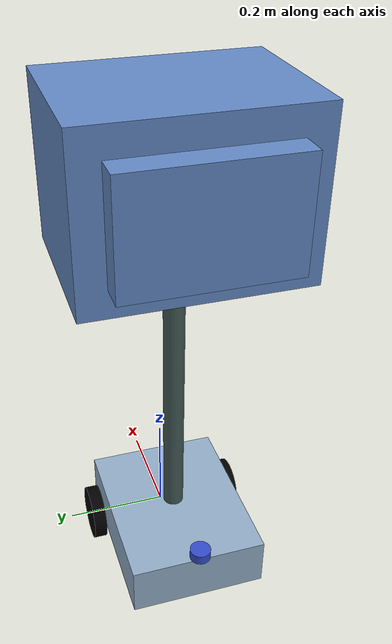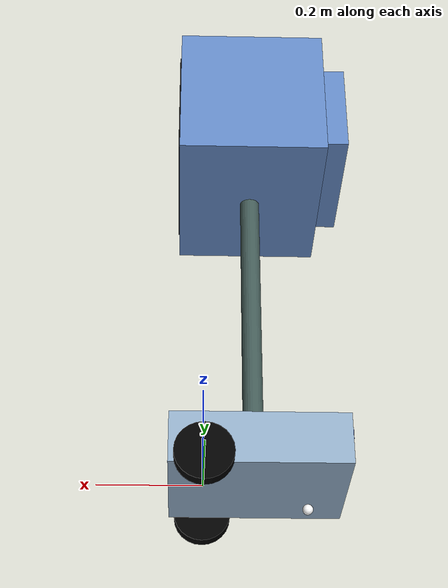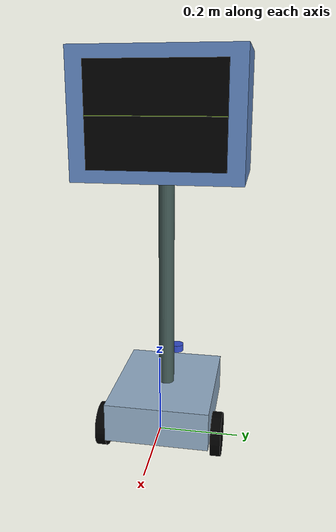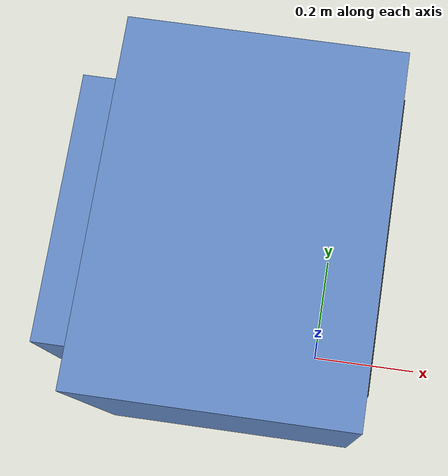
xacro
<?xml version="1.0" ?>
<robot name='robot' xmlns:xacro="http://ros.org/wiki/xacro">

    <xacro:include filename="gazebo.urdf.xacro" />
    <xacro:include filename="lidar.urdf.xacro" />
    <!--xacro:include filename="$(find robot_description)/urdf/depth.urdf.xacro" /-->

    <xacro:property name="chassis_length" value="0.335"/>
    <xacro:property name="chassis_width" value="0.265"/>
    <xacro:property name="chassis_height" value="0.1"/>
    <xacro:property name="rod_radius" value="0.02"/>
    <xacro:property name="rod_height" value="0.8"/>
    <xacro:property name="screen_x" value="0.3"/>
    <xacro:property name="screen_y" value="0.4"/>
    <xacro:property name="screen_z" value="0.3"/>
    <xacro:property name="screen_back_x" value="0.1"/>
    <xacro:property name="screen_back_y" value="${screen_y - 0.1}"/>
    <xacro:property name="screen_back_z" value="${screen_z - 0.1}"/>
    <xacro:property name="screen_face_x" value="0.01"/>
    <xacro:property name="screen_face_y" value="${screen_y * 0.8}"/>
    <xacro:property name="screen_face_z" value="${screen_z * 0.8}"/>
    <xacro:property name="screen_face_line_thickness" value="${0.002}"/>
    <xacro:property name="wheel_radius" value="0.055"/>
    <xacro:property name="wheel_thickness" value="0.026"/>
    <xacro:property name="wheel_mass" value="0.05"/>
    <xacro:property name="wheel_offset_x" value="0.27"/>
    <xacro:property name="wheel_offset_y" value="0.1485"/>
    <xacro:property name="wheel_offset_z" value="0.01"/>
    <xacro:property name="caster_wheel_radius" value="0.01"/>
    <xacro:property name="caster_wheel_mass" value="0.01"/>
    <xacro:property name="caster_wheel_offset_x" value="0.075"/>
    <xacro:property name="caster_wheel_offset_z" value="${wheel_offset_z - wheel_radius + caster_wheel_radius}"/>
    <xacro:property name="mass" value="1.0"/>

    <material name="white">
        <color rgba="1 1 1 1" />
    </material>

    <material name="blue-gray_base">
        <color rgba="0.576 0.682 0.784 1"/>
    </material>

    <material name="gray__rod">
        <color rgba="0.263 0.357 0.341 1"/>
    </material>

    <material name="blue_screen">
        <color rgba="0.388 0.537 0.773 1"/>
    </material>

    <material name="green_screen_face_line">
        <color rgba="0.51 0.698 0.188 1"/>
    </material>

    <material name="blue">
        <color rgba="0.2 0.2 1 1"/>
    </material>

    <material name="black">
        <color rgba="0 0 0 1"/>
    </material>

    <material name="red">
        <color rgba="1 0 0 1"/>
    </material>

    <link name="base_link">
    </link>

    <link name="base_footprint">
    </link>

    <joint name="base_footprint_joint" type="fixed">
        <parent link="base_link"/>
        <child link="base_footprint"/>
        <origin xyz="0 0 -0.138" rpy="0 0 0"/>
    </joint>

    <joint name="chassis_joint" type="fixed">
        <parent link="base_link"/>
        <child link="chassis"/>
        <origin xyz="${-wheel_offset_x} 0 ${-wheel_offset_z}"/>
    </joint>

    <link name='chassis'>

    <inertial>
        <origin xyz="${chassis_length/2} 0 ${chassis_height/2}" rpy="0 0 0"/>
        <mass value="${mass}" />
        <inertia ixx="${(1/12) * mass * (chassis_width*chassis_width+chassis_height*chassis_height)}" ixy="0.0" ixz="0.0"
                 iyy="${(1/12) * mass * (chassis_length*chassis_length+chassis_height*chassis_height)}" iyz="0.0"
                 izz="${(1/12) * mass * (chassis_length*chassis_length+chassis_width*chassis_width)}" />
    </inertial>
    <visual>
        <origin xyz="${chassis_length/2} 0 ${chassis_height/2}"/>
        <geometry>
            <box size="${chassis_length} ${chassis_width} ${chassis_height}"/>
        </geometry>
        <material name="blue-gray_base"/>
    </visual>
    <collision>
        <origin xyz="${chassis_length/2} 0 ${chassis_height/2}"/>
        <geometry>
            <box size="${chassis_length} ${chassis_width} ${chassis_height}"/>
        </geometry>
    </collision>
    </link>

    <gazebo reference="chassis">
        <material>Gazebo/Gray</material>
    </gazebo>

    <joint name="left_wheel_joint" type="continuous">
        <parent link="base_link"/>
        <child link="left_wheel"/>
        <origin xyz="0 ${wheel_offset_y} 0" rpy="-${pi/2} 0 0" />
        <axis xyz="0 0 1"/>
    </joint>

    <joint name="rod_joint" type="fixed">
        <parent link="base_link"/>
        <child link="rod"/>
        <origin xyz="${-chassis_length/3.5} 0 ${rod_height/2}" rpy="0 0 0" />
    </joint>

    <link name="rod">
        <visual>
            <geometry>
                <cylinder radius="${rod_radius}" length="${rod_height}"/>
            </geometry>
            <material name="gray__rod"/>
        </visual>
        <collision>
            <geometry>
                <cylinder radius="${rod_radius}" length="${rod_height}"/>
            </geometry>
        </collision>
    </link>

    <joint name="screen_joint" type="continuous">
        <parent link="rod"/>
        <child link="screen"/>
        <origin xyz="0 0 ${rod_height/2}" rpy="0 0 0" />
        <axis xyz="0 0 -1"/>
    </joint>

    <link name="screen">
    <inertial>
        <origin xyz="0 0 0" rpy="0 0 0"/>
        <mass value="${mass}" />
        <inertia ixx="${(1/12) * mass * (chassis_width*chassis_width+chassis_height*chassis_height)}" ixy="0.0" ixz="0.0"
                 iyy="${(1/12) * mass * (chassis_length*chassis_length+chassis_height*chassis_height)}" iyz="0.0"
                 izz="${(1/12) * mass * (chassis_length*chassis_length+chassis_width*chassis_width)}" />
    </inertial>
        <visual>
            <geometry>
                <box size="${screen_x} ${screen_y} ${screen_z}"/>
            </geometry>
            <material name="blue_screen"/>
        </visual>
        <collision>
            <geometry>
                <cylinder radius="${rod_radius}" length="${rod_height}"/>
            </geometry>
        </collision>
    </link>

    <joint name="screen_back_joint" type="fixed">
        <parent link="screen"/>
        <child link="screen_back"/>
        <origin xyz="${-screen_x/2} 0 0" rpy="0 0 0" />
    </joint>

    <link name="screen_back">
        <visual>
            <geometry>
                <box size="${screen_back_x} ${screen_back_y} ${screen_back_z}"/>
            </geometry>
            <material name="blue_screen"/>
        </visual>
        <collision>
            <geometry>
                <cylinder radius="${rod_radius}" length="${rod_height}"/>
            </geometry>
        </collision>
    </link>

    <joint name="screen_face_joint" type="fixed">
        <parent link="screen"/>
        <child link="screen_face"/>
        <origin xyz="${screen_x/2-0.002} 0 0" rpy="0 0 0" />
    </joint>

    <link name="screen_face">
        <visual>
            <geometry>
                <box size="${screen_face_x} ${screen_face_y} ${screen_face_z}"/>
            </geometry>
            <material name="black"/>
        </visual>
        <collision>
            <geometry>
                <box size="0.01 ${screen_face_y} ${screen_face_z}"/>
            </geometry>
        </collision>
    </link>

    <joint name="screen_face_line_joint" type="fixed">
        <parent link="screen_face"/>
        <child link="screen_face_line"/>
        <origin xyz="0.0001 0 0" rpy="0 0 0" />
        <axis xyz="0 0 -1"/>
    </joint>

    <link name="screen_face_line">
        <visual>
            <geometry>
                <box size="${screen_face_x} ${screen_face_y} ${screen_face_line_thickness}"/>
            </geometry>
            <material name="green_screen_face_line"/>
        </visual>
    </link>

    <link name="left_wheel">
        <visual>
            <geometry>
                <cylinder radius="${wheel_radius}" length="${wheel_thickness}"/>
            </geometry>
            <material name="black"/>
        </visual>
        <collision>
            <geometry>
                <sphere radius="${wheel_radius}"/>
            </geometry>
        </collision>
        <inertial>
            <origin xyz="0 0 0" rpy="0 0 0"/>
            <mass value="${wheel_mass}" />
            <inertia ixx="${(1/12) * wheel_mass * (3*wheel_radius*wheel_radius + wheel_thickness*wheel_thickness)}" ixy="0.0" ixz="0.0"
                     iyy="${(1/12) * wheel_mass * (3*wheel_radius*wheel_radius + wheel_thickness*wheel_thickness)}" iyz="0.0"
                     izz="${(1/2) * wheel_mass * (wheel_radius*wheel_radius)}" />
        </inertial>
    </link>

    <gazebo reference="left_wheel">
        <material>Gazebo/Black</material>
    </gazebo>

    <joint name="right_wheel_joint" type="continuous">
        <parent link="base_link"/>
        <child link="right_wheel"/>
        <origin xyz="0 ${-wheel_offset_y} 0" rpy="${pi/2} 0 0" />
        <axis xyz="0 0 -1"/>
    </joint>

    <link name="right_wheel">
        <visual>
            <geometry>
                <cylinder radius="${wheel_radius}" length="${wheel_thickness}"/>
            </geometry>
            <material name="black"/>
        </visual>
        <collision>
            <geometry>
                <sphere radius="${wheel_radius}"/>
            </geometry>
        </collision>
        <inertial>
            <origin xyz="0 0 0" rpy="0 0 0"/>
            <mass value="${wheel_mass}" />
            <inertia ixx="${(1/12) * wheel_mass * (3*wheel_radius*wheel_radius + wheel_thickness*wheel_thickness)}" ixy="0.0" ixz="0.0"
                     iyy="${(1/12) * wheel_mass * (3*wheel_radius*wheel_radius + wheel_thickness*wheel_thickness)}" iyz="0.0"
                     izz="${(1/2) * wheel_mass * (wheel_radius*wheel_radius)}" />
        </inertial>
    </link>

    <gazebo reference="right_wheel">
        <material>Gazebo/Black</material>
    </gazebo>

    <joint name="caster_wheel_joint" type="fixed">
        <parent link="chassis"/>
        <child link="caster_wheel"/>
        <origin xyz="${caster_wheel_offset_x} 0 ${caster_wheel_offset_z}"/>
    </joint>

    <link name="caster_wheel">
        <visual>
            <geometry>
                <sphere radius="${caster_wheel_radius}"/>
            </geometry>
            <material name="white"/>
        </visual>
        <collision>
            <geometry>
                <sphere radius="${caster_wheel_radius}"/>
            </geometry>
        </collision>
        <inertial>
            <origin xyz="0 0 0" rpy="0 0 0"/>
            <mass value="${caster_wheel_mass}" />
            <inertia ixx="${(2/5) * caster_wheel_mass * (caster_wheel_radius*caster_wheel_radius)}" ixy="0.0" ixz="0.0"
                     iyy="${(2/5) * caster_wheel_mass * (caster_wheel_radius*caster_wheel_radius)}" iyz="0.0"
                     izz="${(2/5) * caster_wheel_mass * (caster_wheel_radius*caster_wheel_radius)}" />
        </inertial>
    </link>

    <gazebo reference="caster_wheel">
        <material>Gazebo/White</material>
        <mu1 value="0.001"/>
        <mu2 value="0.001"/>
    </gazebo>

</robot>

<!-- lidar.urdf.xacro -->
<robot xmlns:xacro="http://www.ros.org/wiki/xacro">

    <link name="laser_frame">
        <visual>
            <geometry>
                <cylinder radius="0.02" length="0.02"/>
            </geometry>
            <material name="Blue">
                <color rgba="0.2 0.3 0.8 1"/>
            </material>
        </visual>
        <collision>
            <geometry>
                <cylinder radius="0.05" length="0.02"/>
            </geometry>
        </collision>
        <inertial>
            <mass value="0.01"/>
            <inertia ixx="0.001" iyy="0.001" izz="0.001" ixy="0" ixz="0" iyz="0"/>
        </inertial>
    </link>

    <joint name="laser_joint" type="fixed">
        <parent link="chassis" />
        <child link="laser_frame" />
        <origin xyz="0 0 0.12" rpy="0 0 ${pi/2}" />
    </joint>

    <gazebo reference="laser_frame">
        <material>Gazebo/Blue</material>

        <sensor name='laser_sensor_frame' type='gpu_lidar'>"
            <gz_frame_id>robot/laser_frame</gz_frame_id>
            <pose> 0 0 0 0 0 0 </pose>
            <visualize>true</visualize>
            <always_on>true</always_on>
            <update_rate>10</update_rate>
            <ray>
                <scan>
                    <horizontal>
                        <samples>360</samples>
                        <min_angle>-3.14</min_angle>
                        <max_angle>3.14</max_angle>
                    </horizontal>
                </scan>
                <range>
                    <min>0.3</min>
                    <max>12</max>
                </range>
                <noise>
                    <type>gaussian</type>
                    <mean>0.0</mean>
                    <stddev>0.007</stddev>
                </noise>
            </ray>
        </sensor>
    </gazebo>
</robot>
